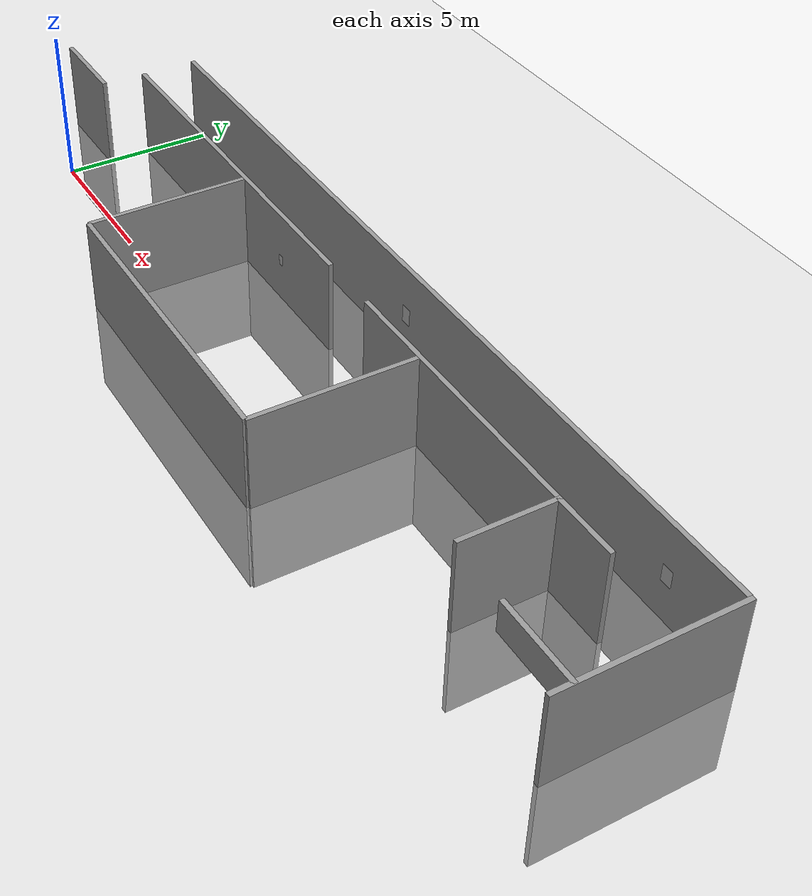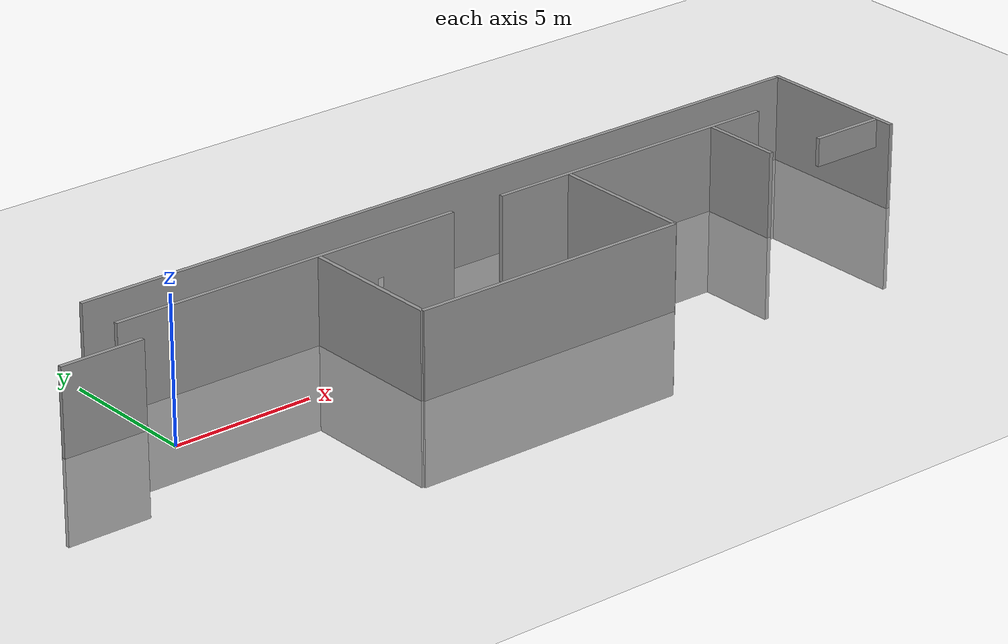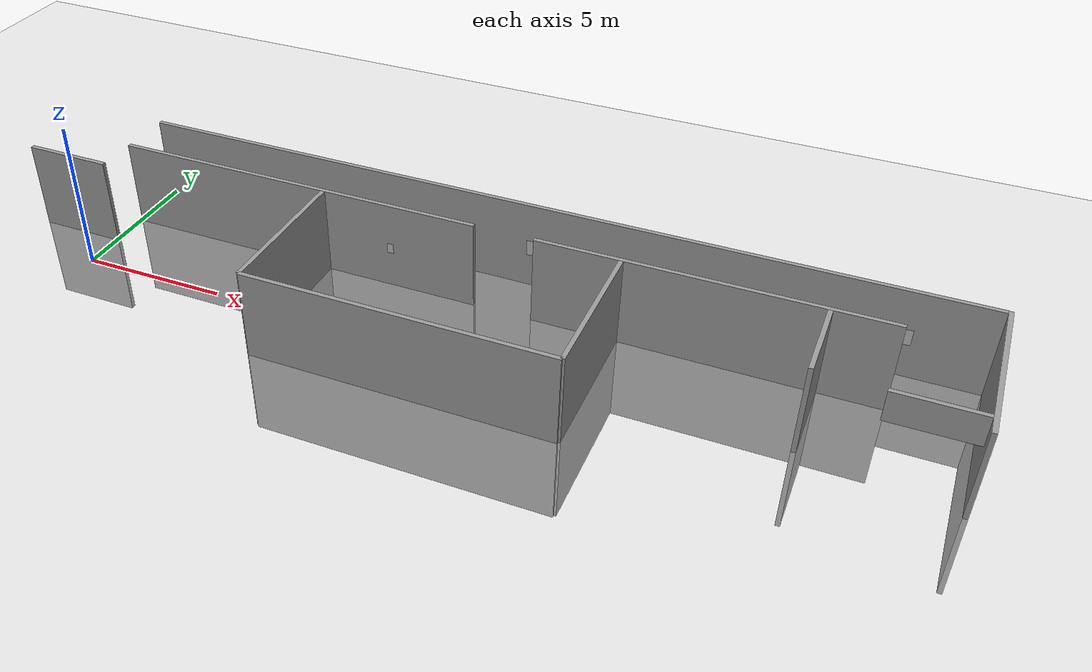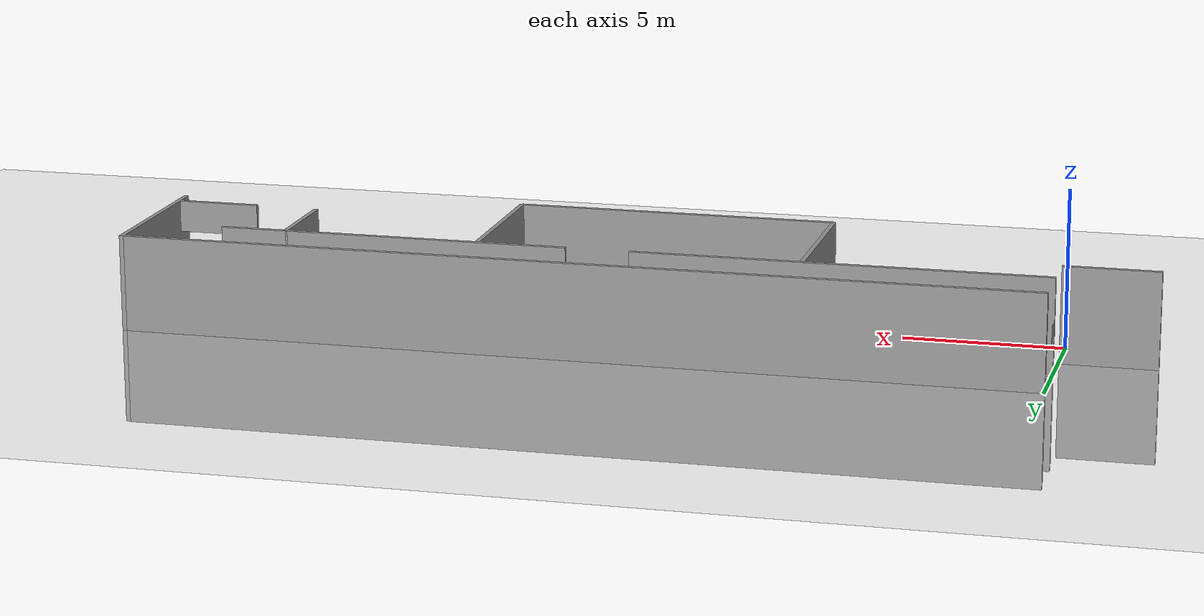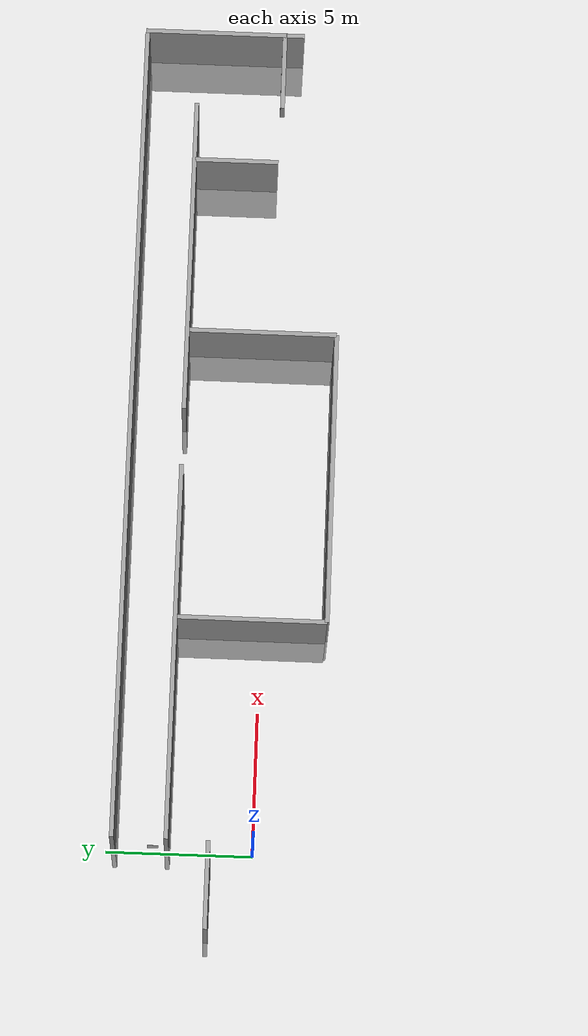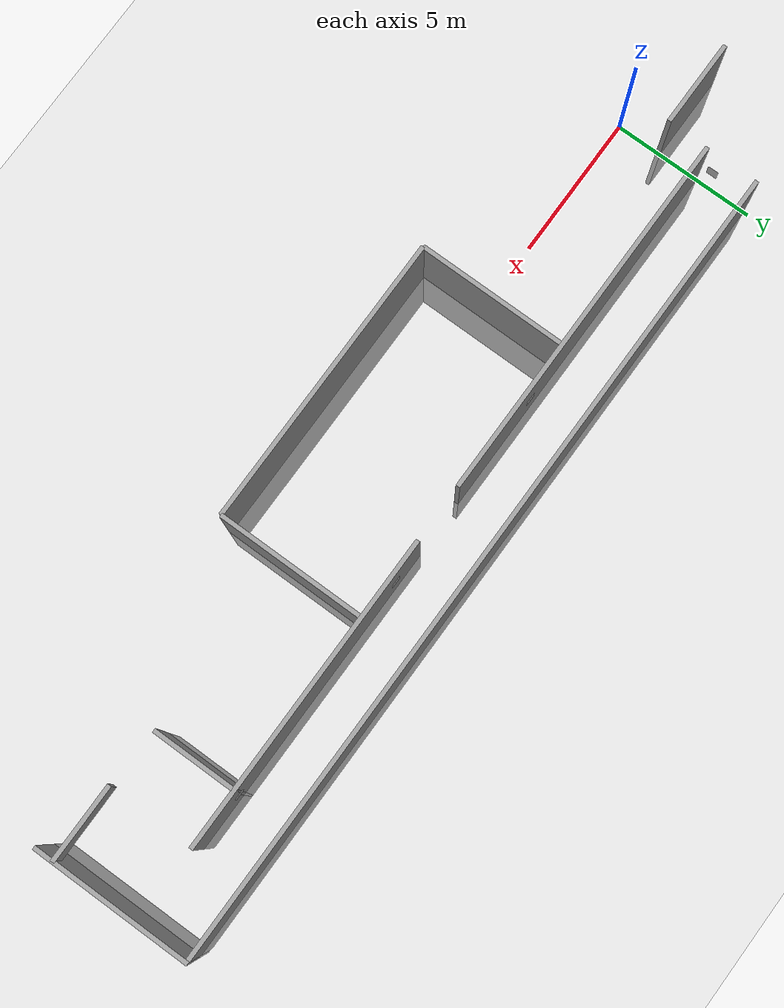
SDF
<sdf version="1.6">
 <world name="default">
  <light name="sun" type="directional">
   <cast_shadows>0</cast_shadows>
   <pose>0 0 10 0 -0 0</pose>
   <diffuse>0.8 0.8 0.8 1</diffuse>
   <specular>0.1 0.1 0.1 1</specular>
   <attenuation>
    <range>1000</range>
    <constant>0.9</constant>
    <linear>0.01</linear>
    <quadratic>0.001</quadratic>
   </attenuation>
   <direction>-0.5 0.5 -1</direction>
  </light>
  <include><uri>model://main_hall_tags/Tag0</uri><pose>0 3.38 1.4 0 0 -1.57</pose></include>
  <include><uri>model://main_hall_tags/Tag2</uri><pose>9.26 3.0 1.4 0 0 0</pose></include>
  <include><uri>model://main_hall_tags/Tag1</uri><pose>14.29 4.68 1.4 0 0 3.14</pose></include>
  <include><uri>model://main_hall_tags/Tag3</uri><pose>16.23 3.00 1.4 0 0 0</pose></include>
  <include><uri>model://main_hall_tags/Tag5</uri><pose>24.10 3.0 1.4 0 0 0</pose></include>
  <include><uri>model://main_hall_tags/Tag4</uri><pose>26.16 4.68 1.4 0 0 3.14</pose></include>
  <include><uri>model://R2/Tag0R</uri><pose>10.04 2.85 1.4 0 0 3.14</pose></include>
  <model name="ground_plane">
   <static>1</static>
   <link name="link">
    <collision name="collision">
     <geometry><plane><normal>0 0 1</normal><size>100 100</size></plane></geometry>
     <surface><friction><ode><mu>100</mu><mu2>50</mu2></ode></friction></surface>
    </collision>
    <visual name="visual">
     <cast_shadows>0</cast_shadows>
     <geometry><plane><normal>0 0 1</normal><size>100 100</size></plane></geometry>
     <material>
      <script><uri>file://media/materials/scripts/gazebo.material</uri><name>Gazebo/Grey</name></script>
     </material>
    </visual>
   </link>
  </model>
  <gravity>0 0 -9.8</gravity>
  <magnetic_field>6e-06 2.3e-05 -4.2e-05</magnetic_field>
  <atmosphere type="adiabatic"/>
  <physics name="default_physics" default="0" type="ode">
   <max_step_size>0.001</max_step_size>
   <real_time_factor>1</real_time_factor>
   <real_time_update_rate>1000</real_time_update_rate>
  </physics>
  <scene><ambient>0.4 0.4 0.4 1</ambient><background>0.7 0.7 0.7 1</background><shadows>1</shadows></scene>
  <spherical_coordinates>
   <surface_model>EARTH_WGS84</surface_model>
   <latitude_deg>0</latitude_deg>
   <longitude_deg>0</longitude_deg>
   <elevation>0</elevation>
   <heading_deg>0</heading_deg>
  </spherical_coordinates>
  <model name="Corridor">
   <static>1</static>
   <link name="Wall_1">
    <pose>0 1.5 0 0 0 1.57</pose>
    <collision name="Wall_1_Collision">
     <geometry><box><size>3 0.15 6</size></box></geometry>
     <pose>0 1.5 0 0 0 1.57</pose>
    </collision>
    <visual name="Wall_1_Visual">
     <pose>0 1.5 0 0 0 0</pose>
     <geometry><box><size>0.15 3 6</size></box></geometry>
     <material>
      <script><uri>file://media/materials/scripts/gazebo.material</uri><name>Gazebo/Grey</name></script>
      <ambient>1 1 1 1</ambient>
     </material>
    </visual>
    <pose>0 1.5 0 0 0 0</pose>
   </link>
   <link name="Wall_2">
    <pose>6.5 2.925 0 0 0 0</pose>
    <collision name="Wall_2_Collision"><geometry><box><size>13 0.15 6</size></box></geometry></collision>
    <visual name="Wall_2_Visual">
     <geometry><box><size>13 0.15 6</size></box></geometry>
     <material>
      <script><uri>file://media/materials/scripts/gazebo.material</uri><name>Gazebo/Grey</name></script>
      <ambient>1 1 1 1</ambient>
     </material>
    </visual>
   </link>
   <link name="Wall_10">
    <pose>20.55 2.925 0 0 0 0</pose>
    <collision name="Wall_2_Collision"><geometry><box><size>11.11 0.15 6</size></box></geometry></collision>
    <visual name="Wall_2_Visual">
     <geometry><box><size>11.11 0.15 6</size></box></geometry>
     <material>
      <script><uri>file://media/materials/scripts/gazebo.material</uri><name>Gazebo/Grey</name></script>
      <ambient>1 1 1 1</ambient>
     </material>
    </visual>
   </link>
   <link name="Wall_3">
    <pose>14.325 4.755 0 0 0 0</pose>
    <collision name="Wall_3_Collision"><geometry><box><size>28.65 0.15 6</size></box></geometry></collision>
    <visual name="Wall_3_Visual">
     <geometry><box><size>28.65 0.15 6</size></box></geometry>
     <material>
      <script><uri>file://media/materials/scripts/gazebo.material</uri><name>Gazebo/Grey</name></script>
      <ambient>1 1 1 1</ambient>
     </material>
    </visual>
   </link>
   <link name="Wall_4">
    <pose>28.725 2.025 0 0 0 0</pose>
    <collision name="Wall_4_Collision"><geometry><box><size>0.15 5.57 6</size></box></geometry></collision>
    <visual name="Wall_4_Visual">
     <geometry><box><size>0.15 5.57 6</size></box></geometry>
     <material>
      <script><uri>file://media/materials/scripts/gazebo.material</uri><name>Gazebo/Grey</name></script>
      <ambient>1 1 1 1</ambient>
     </material>
    </visual>
   </link>
   <link name="Wall_5">
    <pose>24.025 1.5 0 0 0 0</pose>
    <collision name="Wall_5_Collision"><geometry><box><size>0.15 3 6</size></box></geometry></collision>
    <visual name="Wall_5_Visual">
     <geometry><box><size>0.15 3 6</size></box></geometry>
     <material>
      <script><uri>file://media/materials/scripts/gazebo.material</uri><name>Gazebo/Grey</name></script>
      <ambient>1 1 1 1</ambient>
     </material>
    </visual>
   </link>
   <link name="Wall_6">
    <pose>27.405 -0.075 2.5 0 0 0</pose>
    <collision name="Wall_5_Collision"><geometry><box><size>2.74 0.15 1</size></box></geometry></collision>
    <visual name="Wall_6_Visual">
     <geometry><box><size>2.74 0.15 1</size></box></geometry>
     <material>
      <script><uri>file://media/materials/scripts/gazebo.material</uri><name>Gazebo/Grey</name></script>
      <ambient>1 1 1 1</ambient>
     </material>
    </visual>
   </link>
   <link name="Wall_7">
    <pose>7.65 0.305 0 0 0 0</pose>
    <collision name="Wall_7_Collision"><geometry><box><size>0.15 5.09 6</size></box></geometry></collision>
    <visual name="Wall_7_Visual">
     <geometry><box><size>0.15 5.09 6</size></box></geometry>
     <material>
      <script><uri>file://media/materials/scripts/gazebo.material</uri><name>Gazebo/Grey</name></script>
      <ambient>1 1 1 1</ambient>
     </material>
    </visual>
   </link>
   <link name="Wall_8">
    <pose>12.735 -2.24 0 0 0 0</pose>
    <collision name="Wall_8_Collision"><geometry><box><size>10.17 0.15 6</size></box></geometry></collision>
    <visual name="Wall_8_Visual">
     <geometry><box><size>10.17 0.15 6</size></box></geometry>
     <material>
      <script><uri>file://media/materials/scripts/gazebo.material</uri><name>Gazebo/Grey</name></script>
      <ambient>1 1 1 1</ambient>
     </material>
    </visual>
   </link>
   <link name="Wall_9">
    <pose>17.82 0.305 0 0 0 0</pose>
    <collision name="Wall_9_Collision"><geometry><box><size>0.15 5.09 6</size></box></geometry></collision>
    <visual name="Wall_9_Visual">
     <geometry><box><size>0.15 5.09 6</size></box></geometry>
     <material>
      <script><uri>file://media/materials/scripts/gazebo.material</uri><name>Gazebo/Grey</name></script>
      <ambient>1 1 1 1</ambient>
     </material>
    </visual>
   </link>
  </model>
 </world>
</sdf>

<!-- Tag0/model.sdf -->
<sdf version="1.6">
  <model name="Tag0">
    <static>true</static>
    <link name="link">
      <pose>0 0 0 0 0 0</pose>
      <collision name="collision">
        <geometry>
          <box>
            <size>0.3777 0.001 0.545985</size>
          </box>
        </geometry>
      </collision>
      <visual name="visual">
        <cast_shadows>false</cast_shadows>
        <geometry>
          <box>
            <size>0.3777 0.001 0.545985</size>
          </box>
        </geometry>
        <material>
          <script>
            <uri>model://Tag0/materials/scripts</uri>
	    <uri>model://Tag0/materials/textures</uri>
	    <name>vrc/Tag0</name>
          </script>
        </material>
      </visual>
    </link>
  </model>
</sdf>

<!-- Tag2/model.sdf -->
<sdf version="1.6">
  <model name="Tag2">
    <static>true</static>
    <link name="link">
      <pose>0 0 0 0 0 0</pose>
      <collision name="collision">
        <geometry>
          <box>
            <size>0.3777 0.001 0.545985</size>
          </box>
        </geometry>
      </collision>
      <visual name="visual">
        <cast_shadows>false</cast_shadows>
        <geometry>
          <box>
            <size>0.3777 0.001 0.545985</size>
          </box>
        </geometry>
        <material>
          <script>
            <uri>model://Tag2/materials/scripts</uri>
	    <uri>model://Tag2/materials/textures</uri>
	    <name>vrc/Tag2</name>
          </script>
        </material>
      </visual>
    </link>
  </model>
</sdf>

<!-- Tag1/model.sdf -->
<sdf version="1.6">
  <model name="Tag1">
    <static>true</static>
    <link name="link">
      <pose>0 0 0 0 0 0</pose>
      <collision name="collision">
        <geometry>
          <box>
           <size>0.3777 0.001 0.545985</size>
          </box>
        </geometry>
      </collision>
      <visual name="visual">
        <cast_shadows>false</cast_shadows>
        <geometry>
          <box>
            <size>0.3777 0.001 0.545985</size>
          </box>
        </geometry>
        <material>
          <script>
            <uri>model://Tag1/materials/scripts</uri>
	    <uri>model://Tag1/materials/textures</uri>
	    <name>vrc/Tag1</name>
          </script>
        </material>
      </visual>
    </link>
  </model>
</sdf>

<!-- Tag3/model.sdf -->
<sdf version="1.6">
  <model name="Tag3">
    <static>true</static>
    <link name="link">
      <pose>0 0 0 0 0 0</pose>
      <collision name="collision">
        <geometry>
          <box>
            <size>0.3777 0.001 0.545985</size>
          </box>
        </geometry>
      </collision>
      <visual name="visual">
        <cast_shadows>false</cast_shadows>
        <geometry>
          <box>
            <size>0.3777 0.001 0.545985</size>
          </box>
        </geometry>
        <material>
          <script>
            <uri>model://Tag3/materials/scripts</uri>
	    <uri>model://Tag3/materials/textures</uri>
	    <name>vrc/Tag3</name>
          </script>
        </material>
      </visual>
    </link>
  </model>
</sdf>

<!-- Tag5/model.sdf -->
<sdf version="1.6">
  <model name="Tag5">
    <static>true</static>
    <link name="link">
      <pose>0 0 0 0 0 0</pose>
      <collision name="collision">
        <geometry>
          <box>
            <size>0.3777 0.001 0.545985</size>
          </box>
        </geometry>
      </collision>
      <visual name="visual">
        <cast_shadows>false</cast_shadows>
        <geometry>
          <box>
            <size>0.3777 0.001 0.545985</size>
          </box>
        </geometry>
        <material>
          <script>
            <uri>model://Tag5/materials/scripts</uri>
	    <uri>model://Tag5/materials/textures</uri>
	    <name>vrc/Tag5</name>
          </script>
        </material>
      </visual>
    </link>
  </model>
</sdf>

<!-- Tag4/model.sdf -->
<sdf version="1.6">
  <model name="Tag4">
    <static>true</static>
    <link name="link">
      <pose>0 0 0 0 0 0</pose>
      <collision name="collision">
        <geometry>
          <box>
            <size>0.3777 0.001 0.545985</size>
          </box>
        </geometry>
      </collision>
      <visual name="visual">
        <cast_shadows>false</cast_shadows>
        <geometry>
          <box>
            <size>0.3777 0.001 0.545985</size>
          </box>
        </geometry>
        <material>
          <script>
            <uri>model://Tag4/materials/scripts</uri>
	    <uri>model://Tag4/materials/textures</uri>
	    <name>vrc/Tag4</name>
          </script>
        </material>
      </visual>
    </link>
  </model>
</sdf>

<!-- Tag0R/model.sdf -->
<sdf version="1.6">
  <model name="Tag0R">
    <static>true</static>
    <link name="link">
      <pose>0 0 0 0 0 0</pose>
      <collision name="collision">
        <geometry>
          <box>
            <size>0.215 0.001 0.345</size>
          </box>
        </geometry>
      </collision>
      <visual name="visual">
        <cast_shadows>false</cast_shadows>
        <geometry>
          <box>
            <size>0.215 0.001 0.345</size>
          </box>
        </geometry>
        <material>
          <script>
            <uri>model://R2/Tag0R/materials/scripts</uri>
	    <uri>model://R2/Tag0R/materials/textures</uri>
	    <name>vrc/Tag0R</name>
          </script>
        </material>
      </visual>
    </link>
  </model>
</sdf>
